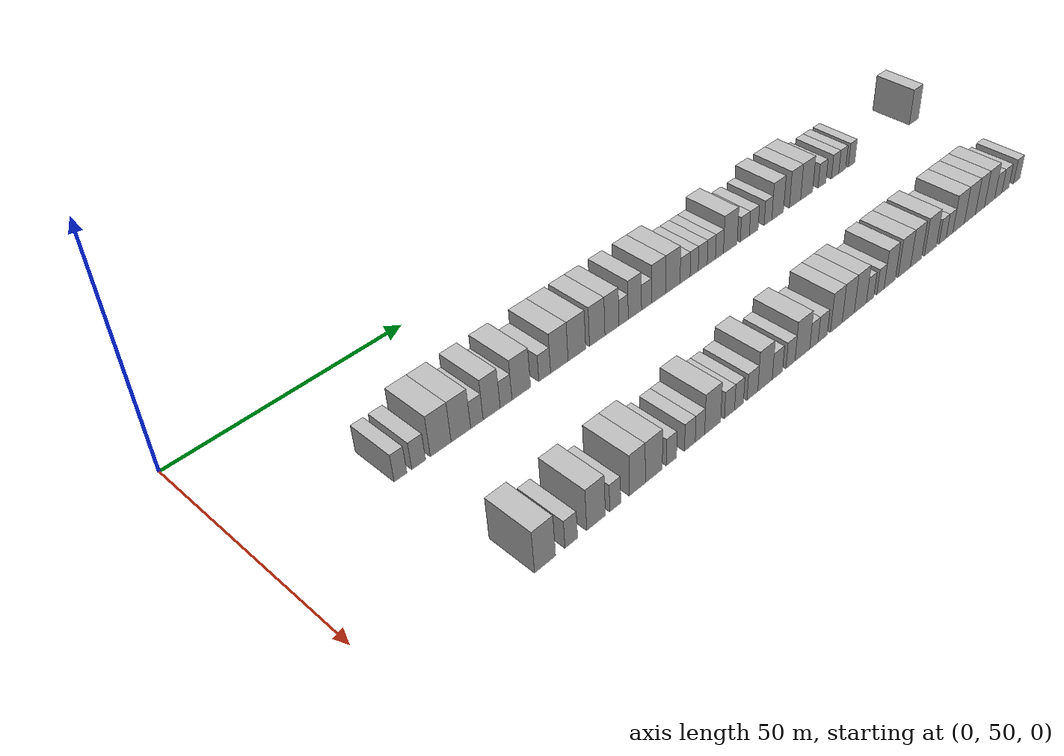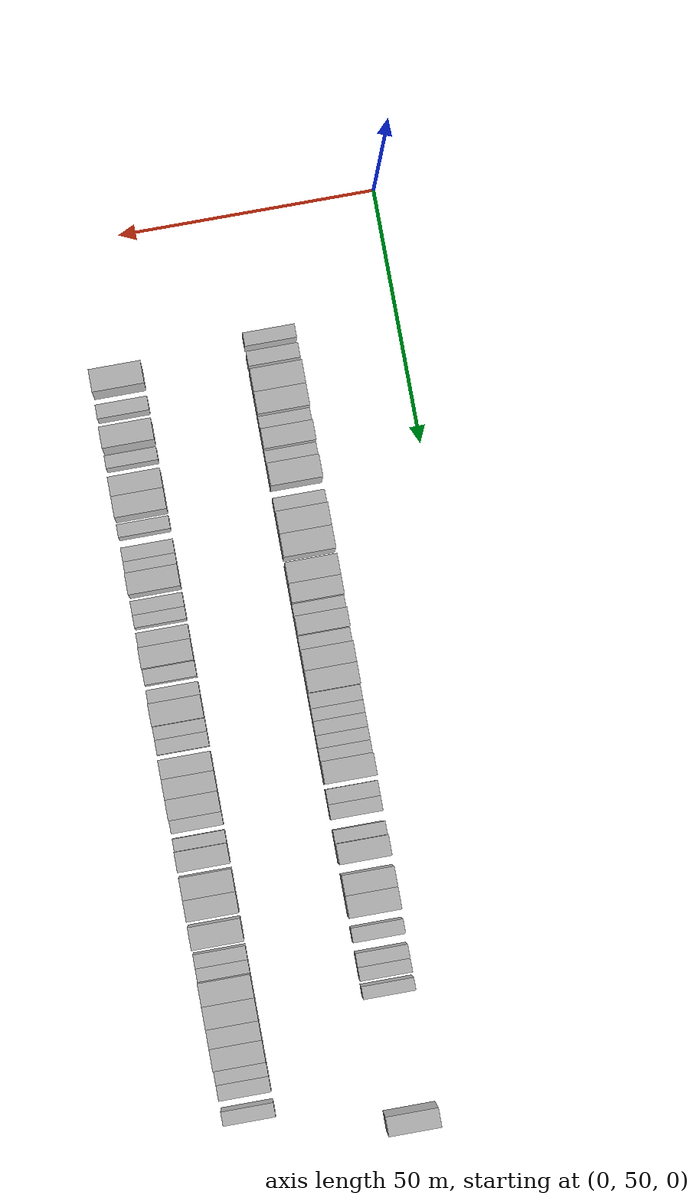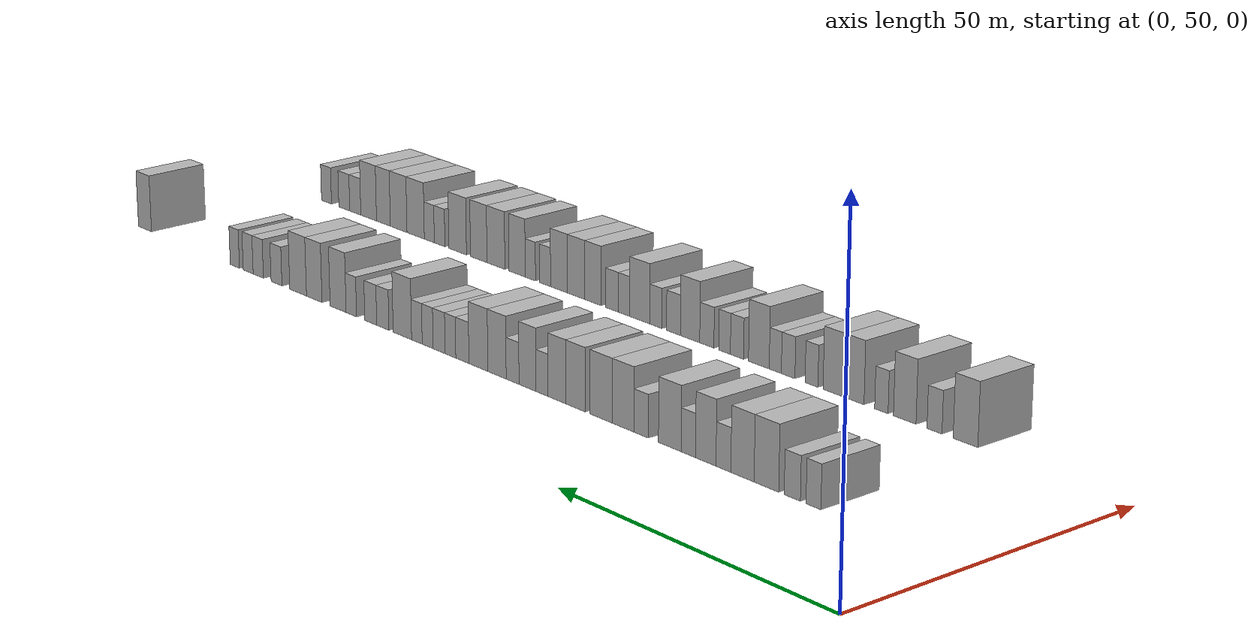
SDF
<sdf version="1.6">
 <world name="default">
  <model name="building_77">
   <static>1</static>
   <pose>25.0000 75.3189 0 0.000000 0.000000 0.000000</pose>
   <link name="link">
    <pose>0 0 3.00 0 0 0</pose>
    <collision name="collision"><geometry><box><size>10.0000 2.6233 6.0000</size></box></geometry></collision>
    <visual name="visual">
     <cast_shadows>0</cast_shadows>
     <geometry><box><size>10.0000 2.6233 6.0000</size></box></geometry>
     <material>
      <script>
       <uri>model://HANNAS_wall/materials/scripts</uri>
       <uri>model://HANNAS_wall/materials/textures</uri>
       <name>vrc/HANNAS_wall</name>
      </script>
     </material>
    </visual>
   </link>
  </model>
  <model name="building_78">
   <static>1</static>
   <pose>25.0000 79.0776 0 0.000000 0.000000 0.000000</pose>
   <link name="link">
    <pose>0 0 3.00 0 0 0</pose>
    <collision name="collision"><geometry><box><size>10.0000 2.8940 6.0000</size></box></geometry></collision>
    <visual name="visual">
     <cast_shadows>0</cast_shadows>
     <geometry><box><size>10.0000 2.8940 6.0000</size></box></geometry>
     <material>
      <script>
       <uri>model://HANNAS_wall/materials/scripts</uri>
       <uri>model://HANNAS_wall/materials/textures</uri>
       <name>vrc/HANNAS_wall</name>
      </script>
     </material>
    </visual>
   </link>
  </model>
  <model name="building_79">
   <static>1</static>
   <pose>25.0000 83.7613 0 0.000000 0.000000 0.000000</pose>
   <link name="link">
    <pose>0 0 4.50 0 0 0</pose>
    <collision name="collision"><geometry><box><size>10.0000 4.4735 9.0000</size></box></geometry></collision>
    <visual name="visual">
     <cast_shadows>0</cast_shadows>
     <geometry><box><size>10.0000 4.4735 9.0000</size></box></geometry>
     <material>
      <script>
       <uri>model://HANNAS_wall/materials/scripts</uri>
       <uri>model://HANNAS_wall/materials/textures</uri>
       <name>vrc/HANNAS_wall</name>
      </script>
     </material>
    </visual>
   </link>
  </model>
  <model name="building_80">
   <static>1</static>
   <pose>25.0000 88.1478 0 0.000000 0.000000 0.000000</pose>
   <link name="link">
    <pose>0 0 4.50 0 0 0</pose>
    <collision name="collision"><geometry><box><size>10.0000 4.2995 9.0000</size></box></geometry></collision>
    <visual name="visual">
     <cast_shadows>0</cast_shadows>
     <geometry><box><size>10.0000 4.2995 9.0000</size></box></geometry>
     <material>
      <script>
       <uri>model://HANNAS_wall/materials/scripts</uri>
       <uri>model://HANNAS_wall/materials/textures</uri>
       <name>vrc/HANNAS_wall</name>
      </script>
     </material>
    </visual>
   </link>
  </model>
  <model name="building_81">
   <static>1</static>
   <pose>25.0000 91.6891 0 0.000000 0.000000 0.000000</pose>
   <link name="link">
    <pose>0 0 3.00 0 0 0</pose>
    <collision name="collision"><geometry><box><size>10.0000 2.7831 6.0000</size></box></geometry></collision>
    <visual name="visual">
     <cast_shadows>0</cast_shadows>
     <geometry><box><size>10.0000 2.7831 6.0000</size></box></geometry>
     <material>
      <script>
       <uri>model://HANNAS_wall/materials/scripts</uri>
       <uri>model://HANNAS_wall/materials/textures</uri>
       <name>vrc/HANNAS_wall</name>
      </script>
     </material>
    </visual>
   </link>
  </model>
  <model name="building_82">
   <static>1</static>
   <pose>25.0000 95.0212 0 0.000000 0.000000 0.000000</pose>
   <link name="link">
    <pose>0 0 4.50 0 0 0</pose>
    <collision name="collision"><geometry><box><size>10.0000 3.8811 9.0000</size></box></geometry></collision>
    <visual name="visual">
     <cast_shadows>0</cast_shadows>
     <geometry><box><size>10.0000 3.8811 9.0000</size></box></geometry>
     <material>
      <script>
       <uri>model://HANNAS_wall/materials/scripts</uri>
       <uri>model://HANNAS_wall/materials/textures</uri>
       <name>vrc/HANNAS_wall</name>
      </script>
     </material>
    </visual>
   </link>
  </model>
  <model name="building_83">
   <static>1</static>
   <pose>25.0000 98.3349 0 0.000000 0.000000 0.000000</pose>
   <link name="link">
    <pose>0 0 3.00 0 0 0</pose>
    <collision name="collision"><geometry><box><size>10.0000 2.7463 6.0000</size></box></geometry></collision>
    <visual name="visual">
     <cast_shadows>0</cast_shadows>
     <geometry><box><size>10.0000 2.7463 6.0000</size></box></geometry>
     <material>
      <script>
       <uri>model://HANNAS_wall/materials/scripts</uri>
       <uri>model://HANNAS_wall/materials/textures</uri>
       <name>vrc/HANNAS_wall</name>
      </script>
     </material>
    </visual>
   </link>
  </model>
  <model name="building_84">
   <static>1</static>
   <pose>25.0000 101.9102 0 0.000000 0.000000 0.000000</pose>
   <link name="link">
    <pose>0 0 4.50 0 0 0</pose>
    <collision name="collision"><geometry><box><size>10.0000 4.4043 9.0000</size></box></geometry></collision>
    <visual name="visual">
     <cast_shadows>0</cast_shadows>
     <geometry><box><size>10.0000 4.4043 9.0000</size></box></geometry>
     <material>
      <script>
       <uri>model://HANNAS_wall/materials/scripts</uri>
       <uri>model://HANNAS_wall/materials/textures</uri>
       <name>vrc/HANNAS_wall</name>
      </script>
     </material>
    </visual>
   </link>
  </model>
  <model name="building_85">
   <static>1</static>
   <pose>25.0000 107.5431 0 0.000000 0.000000 0.000000</pose>
   <link name="link">
    <pose>0 0 3.00 0 0 0</pose>
    <collision name="collision"><geometry><box><size>10.0000 2.8617 6.0000</size></box></geometry></collision>
    <visual name="visual">
     <cast_shadows>0</cast_shadows>
     <geometry><box><size>10.0000 2.8617 6.0000</size></box></geometry>
     <material>
      <script>
       <uri>model://HANNAS_wall/materials/scripts</uri>
       <uri>model://HANNAS_wall/materials/textures</uri>
       <name>vrc/HANNAS_wall</name>
      </script>
     </material>
    </visual>
   </link>
  </model>
  <model name="building_86">
   <static>1</static>
   <pose>25.0000 111.1448 0 0.000000 0.000000 0.000000</pose>
   <link name="link">
    <pose>0 0 4.50 0 0 0</pose>
    <collision name="collision"><geometry><box><size>10.0000 4.3417 9.0000</size></box></geometry></collision>
    <visual name="visual">
     <cast_shadows>0</cast_shadows>
     <geometry><box><size>10.0000 4.3417 9.0000</size></box></geometry>
     <material>
      <script>
       <uri>model://HANNAS_wall/materials/scripts</uri>
       <uri>model://HANNAS_wall/materials/textures</uri>
       <name>vrc/HANNAS_wall</name>
      </script>
     </material>
    </visual>
   </link>
  </model>
  <model name="building_87">
   <static>1</static>
   <pose>25.0000 115.5539 0 0.000000 0.000000 0.000000</pose>
   <link name="link">
    <pose>0 0 4.50 0 0 0</pose>
    <collision name="collision"><geometry><box><size>10.0000 4.4764 9.0000</size></box></geometry></collision>
    <visual name="visual">
     <cast_shadows>0</cast_shadows>
     <geometry><box><size>10.0000 4.4764 9.0000</size></box></geometry>
     <material>
      <script>
       <uri>model://HANNAS_wall/materials/scripts</uri>
       <uri>model://HANNAS_wall/materials/textures</uri>
       <name>vrc/HANNAS_wall</name>
      </script>
     </material>
    </visual>
   </link>
  </model>
  <model name="building_88">
   <static>1</static>
   <pose>25.0000 120.8018 0 0.000000 0.000000 0.000000</pose>
   <link name="link">
    <pose>0 0 4.50 0 0 0</pose>
    <collision name="collision"><geometry><box><size>10.0000 4.0196 9.0000</size></box></geometry></collision>
    <visual name="visual">
     <cast_shadows>0</cast_shadows>
     <geometry><box><size>10.0000 4.0196 9.0000</size></box></geometry>
     <material>
      <script>
       <uri>model://HANNAS_wall/materials/scripts</uri>
       <uri>model://HANNAS_wall/materials/textures</uri>
       <name>vrc/HANNAS_wall</name>
      </script>
     </material>
    </visual>
   </link>
  </model>
  <model name="building_89">
   <static>1</static>
   <pose>25.0000 124.6734 0 0.000000 0.000000 0.000000</pose>
   <link name="link">
    <pose>0 0 4.50 0 0 0</pose>
    <collision name="collision"><geometry><box><size>10.0000 3.7235 9.0000</size></box></geometry></collision>
    <visual name="visual">
     <cast_shadows>0</cast_shadows>
     <geometry><box><size>10.0000 3.7235 9.0000</size></box></geometry>
     <material>
      <script>
       <uri>model://HANNAS_wall/materials/scripts</uri>
       <uri>model://HANNAS_wall/materials/textures</uri>
       <name>vrc/HANNAS_wall</name>
      </script>
     </material>
    </visual>
   </link>
  </model>
  <model name="building_90">
   <static>1</static>
   <pose>25.0000 127.7952 0 0.000000 0.000000 0.000000</pose>
   <link name="link">
    <pose>0 0 3.00 0 0 0</pose>
    <collision name="collision"><geometry><box><size>10.0000 2.5201 6.0000</size></box></geometry></collision>
    <visual name="visual">
     <cast_shadows>0</cast_shadows>
     <geometry><box><size>10.0000 2.5201 6.0000</size></box></geometry>
     <material>
      <script>
       <uri>model://HANNAS_wall/materials/scripts</uri>
       <uri>model://HANNAS_wall/materials/textures</uri>
       <name>vrc/HANNAS_wall</name>
      </script>
     </material>
    </visual>
   </link>
  </model>
  <model name="building_91">
   <static>1</static>
   <pose>25.0000 130.8812 0 0.000000 0.000000 0.000000</pose>
   <link name="link">
    <pose>0 0 4.50 0 0 0</pose>
    <collision name="collision"><geometry><box><size>10.0000 3.6520 9.0000</size></box></geometry></collision>
    <visual name="visual">
     <cast_shadows>0</cast_shadows>
     <geometry><box><size>10.0000 3.6520 9.0000</size></box></geometry>
     <material>
      <script>
       <uri>model://HANNAS_wall/materials/scripts</uri>
       <uri>model://HANNAS_wall/materials/textures</uri>
       <name>vrc/HANNAS_wall</name>
      </script>
     </material>
    </visual>
   </link>
  </model>
  <model name="building_92">
   <static>1</static>
   <pose>25.0000 134.0955 0 0.000000 0.000000 0.000000</pose>
   <link name="link">
    <pose>0 0 3.00 0 0 0</pose>
    <collision name="collision"><geometry><box><size>10.0000 2.7766 6.0000</size></box></geometry></collision>
    <visual name="visual">
     <cast_shadows>0</cast_shadows>
     <geometry><box><size>10.0000 2.7766 6.0000</size></box></geometry>
     <material>
      <script>
       <uri>model://HANNAS_wall/materials/scripts</uri>
       <uri>model://HANNAS_wall/materials/textures</uri>
       <name>vrc/HANNAS_wall</name>
      </script>
     </material>
    </visual>
   </link>
  </model>
  <model name="building_93">
   <static>1</static>
   <pose>25.0000 137.4864 0 0.000000 0.000000 0.000000</pose>
   <link name="link">
    <pose>0 0 4.50 0 0 0</pose>
    <collision name="collision"><geometry><box><size>10.0000 4.0050 9.0000</size></box></geometry></collision>
    <visual name="visual">
     <cast_shadows>0</cast_shadows>
     <geometry><box><size>10.0000 4.0050 9.0000</size></box></geometry>
     <material>
      <script>
       <uri>model://HANNAS_wall/materials/scripts</uri>
       <uri>model://HANNAS_wall/materials/textures</uri>
       <name>vrc/HANNAS_wall</name>
      </script>
     </material>
    </visual>
   </link>
  </model>
  <model name="building_94">
   <static>1</static>
   <pose>25.0000 141.5868 0 0.000000 0.000000 0.000000</pose>
   <link name="link">
    <pose>0 0 4.50 0 0 0</pose>
    <collision name="collision"><geometry><box><size>10.0000 4.1957 9.0000</size></box></geometry></collision>
    <visual name="visual">
     <cast_shadows>0</cast_shadows>
     <geometry><box><size>10.0000 4.1957 9.0000</size></box></geometry>
     <material>
      <script>
       <uri>model://HANNAS_wall/materials/scripts</uri>
       <uri>model://HANNAS_wall/materials/textures</uri>
       <name>vrc/HANNAS_wall</name>
      </script>
     </material>
    </visual>
   </link>
  </model>
  <model name="building_95">
   <static>1</static>
   <pose>25.0000 145.1538 0 0.000000 0.000000 0.000000</pose>
   <link name="link">
    <pose>0 0 3.00 0 0 0</pose>
    <collision name="collision"><geometry><box><size>10.0000 2.9384 6.0000</size></box></geometry></collision>
    <visual name="visual">
     <cast_shadows>0</cast_shadows>
     <geometry><box><size>10.0000 2.9384 6.0000</size></box></geometry>
     <material>
      <script>
       <uri>model://HANNAS_wall/materials/scripts</uri>
       <uri>model://HANNAS_wall/materials/textures</uri>
       <name>vrc/HANNAS_wall</name>
      </script>
     </material>
    </visual>
   </link>
  </model>
  <model name="building_96">
   <static>1</static>
   <pose>25.0000 147.8323 0 0.000000 0.000000 0.000000</pose>
   <link name="link">
    <pose>0 0 3.00 0 0 0</pose>
    <collision name="collision"><geometry><box><size>10.0000 2.4186 6.0000</size></box></geometry></collision>
    <visual name="visual">
     <cast_shadows>0</cast_shadows>
     <geometry><box><size>10.0000 2.4186 6.0000</size></box></geometry>
     <material>
      <script>
       <uri>model://HANNAS_wall/materials/scripts</uri>
       <uri>model://HANNAS_wall/materials/textures</uri>
       <name>vrc/HANNAS_wall</name>
      </script>
     </material>
    </visual>
   </link>
  </model>
  <model name="building_97">
   <static>1</static>
   <pose>25.0000 150.4074 0 0.000000 0.000000 0.000000</pose>
   <link name="link">
    <pose>0 0 3.00 0 0 0</pose>
    <collision name="collision"><geometry><box><size>10.0000 2.7315 6.0000</size></box></geometry></collision>
    <visual name="visual">
     <cast_shadows>0</cast_shadows>
     <geometry><box><size>10.0000 2.7315 6.0000</size></box></geometry>
     <material>
      <script>
       <uri>model://HANNAS_wall/materials/scripts</uri>
       <uri>model://HANNAS_wall/materials/textures</uri>
       <name>vrc/HANNAS_wall</name>
      </script>
     </material>
    </visual>
   </link>
  </model>
  <model name="building_98">
   <static>1</static>
   <pose>25.0000 153.0281 0 0.000000 0.000000 0.000000</pose>
   <link name="link">
    <pose>0 0 3.00 0 0 0</pose>
    <collision name="collision"><geometry><box><size>10.0000 2.5101 6.0000</size></box></geometry></collision>
    <visual name="visual">
     <cast_shadows>0</cast_shadows>
     <geometry><box><size>10.0000 2.5101 6.0000</size></box></geometry>
     <material>
      <script>
       <uri>model://HANNAS_wall/materials/scripts</uri>
       <uri>model://HANNAS_wall/materials/textures</uri>
       <name>vrc/HANNAS_wall</name>
      </script>
     </material>
    </visual>
   </link>
  </model>
  <model name="building_99">
   <static>1</static>
   <pose>25.0000 155.5110 0 0.000000 0.000000 0.000000</pose>
   <link name="link">
    <pose>0 0 3.00 0 0 0</pose>
    <collision name="collision"><geometry><box><size>10.0000 2.4556 6.0000</size></box></geometry></collision>
    <visual name="visual">
     <cast_shadows>0</cast_shadows>
     <geometry><box><size>10.0000 2.4556 6.0000</size></box></geometry>
     <material>
      <script>
       <uri>model://HANNAS_wall/materials/scripts</uri>
       <uri>model://HANNAS_wall/materials/textures</uri>
       <name>vrc/HANNAS_wall</name>
      </script>
     </material>
    </visual>
   </link>
  </model>
  <model name="building_100">
   <static>1</static>
   <pose>25.0000 158.8963 0 0.000000 0.000000 0.000000</pose>
   <link name="link">
    <pose>0 0 4.50 0 0 0</pose>
    <collision name="collision"><geometry><box><size>10.0000 4.3149 9.0000</size></box></geometry></collision>
    <visual name="visual">
     <cast_shadows>0</cast_shadows>
     <geometry><box><size>10.0000 4.3149 9.0000</size></box></geometry>
     <material>
      <script>
       <uri>model://HANNAS_wall/materials/scripts</uri>
       <uri>model://HANNAS_wall/materials/textures</uri>
       <name>vrc/HANNAS_wall</name>
      </script>
     </material>
    </visual>
   </link>
  </model>
  <model name="building_101">
   <static>1</static>
   <pose>25.0000 163.5028 0 0.000000 0.000000 0.000000</pose>
   <link name="link">
    <pose>0 0 3.00 0 0 0</pose>
    <collision name="collision"><geometry><box><size>10.0000 2.8981 6.0000</size></box></geometry></collision>
    <visual name="visual">
     <cast_shadows>0</cast_shadows>
     <geometry><box><size>10.0000 2.8981 6.0000</size></box></geometry>
     <material>
      <script>
       <uri>model://HANNAS_wall/materials/scripts</uri>
       <uri>model://HANNAS_wall/materials/textures</uri>
       <name>vrc/HANNAS_wall</name>
      </script>
     </material>
    </visual>
   </link>
  </model>
  <model name="building_102">
   <static>1</static>
   <pose>25.0000 166.3802 0 0.000000 0.000000 0.000000</pose>
   <link name="link">
    <pose>0 0 3.00 0 0 0</pose>
    <collision name="collision"><geometry><box><size>10.0000 2.8567 6.0000</size></box></geometry></collision>
    <visual name="visual">
     <cast_shadows>0</cast_shadows>
     <geometry><box><size>10.0000 2.8567 6.0000</size></box></geometry>
     <material>
      <script>
       <uri>model://HANNAS_wall/materials/scripts</uri>
       <uri>model://HANNAS_wall/materials/textures</uri>
       <name>vrc/HANNAS_wall</name>
      </script>
     </material>
    </visual>
   </link>
  </model>
  <model name="building_103">
   <static>1</static>
   <pose>25.0000 171.0728 0 0.000000 0.000000 0.000000</pose>
   <link name="link">
    <pose>0 0 3.00 0 0 0</pose>
    <collision name="collision"><geometry><box><size>10.0000 2.5285 6.0000</size></box></geometry></collision>
    <visual name="visual">
     <cast_shadows>0</cast_shadows>
     <geometry><box><size>10.0000 2.5285 6.0000</size></box></geometry>
     <material>
      <script>
       <uri>model://HANNAS_wall/materials/scripts</uri>
       <uri>model://HANNAS_wall/materials/textures</uri>
       <name>vrc/HANNAS_wall</name>
      </script>
     </material>
    </visual>
   </link>
  </model>
  <model name="building_104">
   <static>1</static>
   <pose>25.0000 174.3036 0 0.000000 0.000000 0.000000</pose>
   <link name="link">
    <pose>0 0 4.50 0 0 0</pose>
    <collision name="collision"><geometry><box><size>10.0000 3.9330 9.0000</size></box></geometry></collision>
    <visual name="visual">
     <cast_shadows>0</cast_shadows>
     <geometry><box><size>10.0000 3.9330 9.0000</size></box></geometry>
     <material>
      <script>
       <uri>model://HANNAS_wall/materials/scripts</uri>
       <uri>model://HANNAS_wall/materials/textures</uri>
       <name>vrc/HANNAS_wall</name>
      </script>
     </material>
    </visual>
   </link>
  </model>
  <model name="building_105">
   <static>1</static>
   <pose>25.0000 180.2155 0 0.000000 0.000000 0.000000</pose>
   <link name="link">
    <pose>0 0 4.50 0 0 0</pose>
    <collision name="collision"><geometry><box><size>10.0000 3.8908 9.0000</size></box></geometry></collision>
    <visual name="visual">
     <cast_shadows>0</cast_shadows>
     <geometry><box><size>10.0000 3.8908 9.0000</size></box></geometry>
     <material>
      <script>
       <uri>model://HANNAS_wall/materials/scripts</uri>
       <uri>model://HANNAS_wall/materials/textures</uri>
       <name>vrc/HANNAS_wall</name>
      </script>
     </material>
    </visual>
   </link>
  </model>
  <model name="building_106">
   <static>1</static>
   <pose>25.0000 184.2720 0 0.000000 0.000000 0.000000</pose>
   <link name="link">
    <pose>0 0 4.50 0 0 0</pose>
    <collision name="collision"><geometry><box><size>10.0000 4.2222 9.0000</size></box></geometry></collision>
    <visual name="visual">
     <cast_shadows>0</cast_shadows>
     <geometry><box><size>10.0000 4.2222 9.0000</size></box></geometry>
     <material>
      <script>
       <uri>model://HANNAS_wall/materials/scripts</uri>
       <uri>model://HANNAS_wall/materials/textures</uri>
       <name>vrc/HANNAS_wall</name>
      </script>
     </material>
    </visual>
   </link>
  </model>
  <model name="building_107">
   <static>1</static>
   <pose>25.0000 189.7821 0 0.000000 0.000000 0.000000</pose>
   <link name="link">
    <pose>0 0 3.00 0 0 0</pose>
    <collision name="collision"><geometry><box><size>10.0000 2.7980 6.0000</size></box></geometry></collision>
    <visual name="visual">
     <cast_shadows>0</cast_shadows>
     <geometry><box><size>10.0000 2.7980 6.0000</size></box></geometry>
     <material>
      <script>
       <uri>model://HANNAS_wall/materials/scripts</uri>
       <uri>model://HANNAS_wall/materials/textures</uri>
       <name>vrc/HANNAS_wall</name>
      </script>
     </material>
    </visual>
   </link>
  </model>
  <model name="building_108">
   <static>1</static>
   <pose>25.0000 194.5158 0 0.000000 0.000000 0.000000</pose>
   <link name="link">
    <pose>0 0 3.00 0 0 0</pose>
    <collision name="collision"><geometry><box><size>10.0000 2.6694 6.0000</size></box></geometry></collision>
    <visual name="visual">
     <cast_shadows>0</cast_shadows>
     <geometry><box><size>10.0000 2.6694 6.0000</size></box></geometry>
     <material>
      <script>
       <uri>model://HANNAS_wall/materials/scripts</uri>
       <uri>model://HANNAS_wall/materials/textures</uri>
       <name>vrc/HANNAS_wall</name>
      </script>
     </material>
    </visual>
   </link>
  </model>
  <model name="building_109">
   <static>1</static>
   <pose>25.0000 197.1554 0 0.000000 0.000000 0.000000</pose>
   <link name="link">
    <pose>0 0 3.00 0 0 0</pose>
    <collision name="collision"><geometry><box><size>10.0000 2.6099 6.0000</size></box></geometry></collision>
    <visual name="visual">
     <cast_shadows>0</cast_shadows>
     <geometry><box><size>10.0000 2.6099 6.0000</size></box></geometry>
     <material>
      <script>
       <uri>model://HANNAS_wall/materials/scripts</uri>
       <uri>model://HANNAS_wall/materials/textures</uri>
       <name>vrc/HANNAS_wall</name>
      </script>
     </material>
    </visual>
   </link>
  </model>
  <model name="building_110">
   <static>1</static>
   <pose>25.0000 200.6789 0 0.000000 0.000000 0.000000</pose>
   <link name="link">
    <pose>0 0 3.00 0 0 0</pose>
    <collision name="collision"><geometry><box><size>10.0000 2.4370 6.0000</size></box></geometry></collision>
    <visual name="visual">
     <cast_shadows>0</cast_shadows>
     <geometry><box><size>10.0000 2.4370 6.0000</size></box></geometry>
     <material>
      <script>
       <uri>model://HANNAS_wall/materials/scripts</uri>
       <uri>model://HANNAS_wall/materials/textures</uri>
       <name>vrc/HANNAS_wall</name>
      </script>
     </material>
    </visual>
   </link>
  </model>
  <model name="building_111">
   <static>1</static>
   <pose>25.0000 225.4482 0 0.000000 0.000000 0.000000</pose>
   <link name="link">
    <pose>0 0 4.50 0 0 0</pose>
    <collision name="collision"><geometry><box><size>10.0000 3.7005 9.0000</size></box></geometry></collision>
    <visual name="visual">
     <cast_shadows>0</cast_shadows>
     <geometry><box><size>10.0000 3.7005 9.0000</size></box></geometry>
     <material>
      <script>
       <uri>model://HANNAS_wall/materials/scripts</uri>
       <uri>model://HANNAS_wall/materials/textures</uri>
       <name>vrc/HANNAS_wall</name>
      </script>
     </material>
    </visual>
   </link>
  </model>
  <model name="building_180">
   <static>1</static>
   <pose>55.0000 78.4619 0 0.000000 0.000000 0.000000</pose>
   <link name="link">
    <pose>0 0 4.50 0 0 0</pose>
    <collision name="collision"><geometry><box><size>10.0000 4.3713 9.0000</size></box></geometry></collision>
    <visual name="visual">
     <cast_shadows>0</cast_shadows>
     <geometry><box><size>10.0000 4.3713 9.0000</size></box></geometry>
     <material>
      <script>
       <uri>model://HANNAS_wall/materials/scripts</uri>
       <uri>model://HANNAS_wall/materials/textures</uri>
       <name>vrc/HANNAS_wall</name>
      </script>
     </material>
    </visual>
   </link>
  </model>
  <model name="building_181">
   <static>1</static>
   <pose>55.0000 84.0004 0 0.000000 0.000000 0.000000</pose>
   <link name="link">
    <pose>0 0 3.00 0 0 0</pose>
    <collision name="collision"><geometry><box><size>10.0000 2.7057 6.0000</size></box></geometry></collision>
    <visual name="visual">
     <cast_shadows>0</cast_shadows>
     <geometry><box><size>10.0000 2.7057 6.0000</size></box></geometry>
     <material>
      <script>
       <uri>model://HANNAS_wall/materials/scripts</uri>
       <uri>model://HANNAS_wall/materials/textures</uri>
       <name>vrc/HANNAS_wall</name>
      </script>
     </material>
    </visual>
   </link>
  </model>
  <model name="building_182">
   <static>1</static>
   <pose>55.0000 89.4254 0 0.000000 0.000000 0.000000</pose>
   <link name="link">
    <pose>0 0 4.50 0 0 0</pose>
    <collision name="collision"><geometry><box><size>10.0000 4.1444 9.0000</size></box></geometry></collision>
    <visual name="visual">
     <cast_shadows>0</cast_shadows>
     <geometry><box><size>10.0000 4.1444 9.0000</size></box></geometry>
     <material>
      <script>
       <uri>model://HANNAS_wall/materials/scripts</uri>
       <uri>model://HANNAS_wall/materials/textures</uri>
       <name>vrc/HANNAS_wall</name>
      </script>
     </material>
    </visual>
   </link>
  </model>
  <model name="building_183">
   <static>1</static>
   <pose>55.0000 93.7477 0 0.000000 0.000000 0.000000</pose>
   <link name="link">
    <pose>0 0 3.00 0 0 0</pose>
    <collision name="collision"><geometry><box><size>10.0000 2.5002 6.0000</size></box></geometry></collision>
    <visual name="visual">
     <cast_shadows>0</cast_shadows>
     <geometry><box><size>10.0000 2.5002 6.0000</size></box></geometry>
     <material>
      <script>
       <uri>model://HANNAS_wall/materials/scripts</uri>
       <uri>model://HANNAS_wall/materials/textures</uri>
       <name>vrc/HANNAS_wall</name>
      </script>
     </material>
    </visual>
   </link>
  </model>
  <model name="building_184">
   <static>1</static>
   <pose>55.0000 98.8679 0 0.000000 0.000000 0.000000</pose>
   <link name="link">
    <pose>0 0 4.50 0 0 0</pose>
    <collision name="collision"><geometry><box><size>10.0000 3.7403 9.0000</size></box></geometry></collision>
    <visual name="visual">
     <cast_shadows>0</cast_shadows>
     <geometry><box><size>10.0000 3.7403 9.0000</size></box></geometry>
     <material>
      <script>
       <uri>model://HANNAS_wall/materials/scripts</uri>
       <uri>model://HANNAS_wall/materials/textures</uri>
       <name>vrc/HANNAS_wall</name>
      </script>
     </material>
    </visual>
   </link>
  </model>
  <model name="building_185">
   <static>1</static>
   <pose>55.0000 102.7817 0 0.000000 0.000000 0.000000</pose>
   <link name="link">
    <pose>0 0 4.50 0 0 0</pose>
    <collision name="collision"><geometry><box><size>10.0000 4.0871 9.0000</size></box></geometry></collision>
    <visual name="visual">
     <cast_shadows>0</cast_shadows>
     <geometry><box><size>10.0000 4.0871 9.0000</size></box></geometry>
     <material>
      <script>
       <uri>model://HANNAS_wall/materials/scripts</uri>
       <uri>model://HANNAS_wall/materials/textures</uri>
       <name>vrc/HANNAS_wall</name>
      </script>
     </material>
    </visual>
   </link>
  </model>
  <model name="building_186">
   <static>1</static>
   <pose>55.0000 107.0708 0 0.000000 0.000000 0.000000</pose>
   <link name="link">
    <pose>0 0 3.00 0 0 0</pose>
    <collision name="collision"><geometry><box><size>10.0000 2.4912 6.0000</size></box></geometry></collision>
    <visual name="visual">
     <cast_shadows>0</cast_shadows>
     <geometry><box><size>10.0000 2.4912 6.0000</size></box></geometry>
     <material>
      <script>
       <uri>model://HANNAS_wall/materials/scripts</uri>
       <uri>model://HANNAS_wall/materials/textures</uri>
       <name>vrc/HANNAS_wall</name>
      </script>
     </material>
    </visual>
   </link>
  </model>
  <model name="building_187">
   <static>1</static>
   <pose>55.0000 111.6621 0 0.000000 0.000000 0.000000</pose>
   <link name="link">
    <pose>0 0 3.00 0 0 0</pose>
    <collision name="collision"><geometry><box><size>10.0000 2.6913 6.0000</size></box></geometry></collision>
    <visual name="visual">
     <cast_shadows>0</cast_shadows>
     <geometry><box><size>10.0000 2.6913 6.0000</size></box></geometry>
     <material>
      <script>
       <uri>model://HANNAS_wall/materials/scripts</uri>
       <uri>model://HANNAS_wall/materials/textures</uri>
       <name>vrc/HANNAS_wall</name>
      </script>
     </material>
    </visual>
   </link>
  </model>
  <model name="building_188">
   <static>1</static>
   <pose>55.0000 114.2147 0 0.000000 0.000000 0.000000</pose>
   <link name="link">
    <pose>0 0 3.00 0 0 0</pose>
    <collision name="collision"><geometry><box><size>10.0000 2.4139 6.0000</size></box></geometry></collision>
    <visual name="visual">
     <cast_shadows>0</cast_shadows>
     <geometry><box><size>10.0000 2.4139 6.0000</size></box></geometry>
     <material>
      <script>
       <uri>model://HANNAS_wall/materials/scripts</uri>
       <uri>model://HANNAS_wall/materials/textures</uri>
       <name>vrc/HANNAS_wall</name>
      </script>
     </material>
    </visual>
   </link>
  </model>
  <model name="building_189">
   <static>1</static>
   <pose>55.0000 117.5157 0 0.000000 0.000000 0.000000</pose>
   <link name="link">
    <pose>0 0 4.50 0 0 0</pose>
    <collision name="collision"><geometry><box><size>10.0000 4.1881 9.0000</size></box></geometry></collision>
    <visual name="visual">
     <cast_shadows>0</cast_shadows>
     <geometry><box><size>10.0000 4.1881 9.0000</size></box></geometry>
     <material>
      <script>
       <uri>model://HANNAS_wall/materials/scripts</uri>
       <uri>model://HANNAS_wall/materials/textures</uri>
       <name>vrc/HANNAS_wall</name>
      </script>
     </material>
    </visual>
   </link>
  </model>
  <model name="building_190">
   <static>1</static>
   <pose>55.0000 121.9585 0 0.000000 0.000000 0.000000</pose>
   <link name="link">
    <pose>0 0 3.00 0 0 0</pose>
    <collision name="collision"><geometry><box><size>10.0000 2.6974 6.0000</size></box></geometry></collision>
    <visual name="visual">
     <cast_shadows>0</cast_shadows>
     <geometry><box><size>10.0000 2.6974 6.0000</size></box></geometry>
     <material>
      <script>
       <uri>model://HANNAS_wall/materials/scripts</uri>
       <uri>model://HANNAS_wall/materials/textures</uri>
       <name>vrc/HANNAS_wall</name>
      </script>
     </material>
    </visual>
   </link>
  </model>
  <model name="building_191">
   <static>1</static>
   <pose>55.0000 124.5111 0 0.000000 0.000000 0.000000</pose>
   <link name="link">
    <pose>0 0 3.00 0 0 0</pose>
    <collision name="collision"><geometry><box><size>10.0000 2.4079 6.0000</size></box></geometry></collision>
    <visual name="visual">
     <cast_shadows>0</cast_shadows>
     <geometry><box><size>10.0000 2.4079 6.0000</size></box></geometry>
     <material>
      <script>
       <uri>model://HANNAS_wall/materials/scripts</uri>
       <uri>model://HANNAS_wall/materials/textures</uri>
       <name>vrc/HANNAS_wall</name>
      </script>
     </material>
    </visual>
   </link>
  </model>
  <model name="building_192">
   <static>1</static>
   <pose>55.0000 128.1963 0 0.000000 0.000000 0.000000</pose>
   <link name="link">
    <pose>0 0 3.00 0 0 0</pose>
    <collision name="collision"><geometry><box><size>10.0000 2.9625 6.0000</size></box></geometry></collision>
    <visual name="visual">
     <cast_shadows>0</cast_shadows>
     <geometry><box><size>10.0000 2.9625 6.0000</size></box></geometry>
     <material>
      <script>
       <uri>model://HANNAS_wall/materials/scripts</uri>
       <uri>model://HANNAS_wall/materials/textures</uri>
       <name>vrc/HANNAS_wall</name>
      </script>
     </material>
    </visual>
   </link>
  </model>
  <model name="building_193">
   <static>1</static>
   <pose>55.0000 131.7096 0 0.000000 0.000000 0.000000</pose>
   <link name="link">
    <pose>0 0 4.50 0 0 0</pose>
    <collision name="collision"><geometry><box><size>10.0000 4.0641 9.0000</size></box></geometry></collision>
    <visual name="visual">
     <cast_shadows>0</cast_shadows>
     <geometry><box><size>10.0000 4.0641 9.0000</size></box></geometry>
     <material>
      <script>
       <uri>model://HANNAS_wall/materials/scripts</uri>
       <uri>model://HANNAS_wall/materials/textures</uri>
       <name>vrc/HANNAS_wall</name>
      </script>
     </material>
    </visual>
   </link>
  </model>
  <model name="building_194">
   <static>1</static>
   <pose>55.0000 135.2241 0 0.000000 0.000000 0.000000</pose>
   <link name="link">
    <pose>0 0 3.00 0 0 0</pose>
    <collision name="collision"><geometry><box><size>10.0000 2.9650 6.0000</size></box></geometry></collision>
    <visual name="visual">
     <cast_shadows>0</cast_shadows>
     <geometry><box><size>10.0000 2.9650 6.0000</size></box></geometry>
     <material>
      <script>
       <uri>model://HANNAS_wall/materials/scripts</uri>
       <uri>model://HANNAS_wall/materials/textures</uri>
       <name>vrc/HANNAS_wall</name>
      </script>
     </material>
    </visual>
   </link>
  </model>
  <model name="building_195">
   <static>1</static>
   <pose>55.0000 139.0342 0 0.000000 0.000000 0.000000</pose>
   <link name="link">
    <pose>0 0 3.00 0 0 0</pose>
    <collision name="collision"><geometry><box><size>10.0000 2.6552 6.0000</size></box></geometry></collision>
    <visual name="visual">
     <cast_shadows>0</cast_shadows>
     <geometry><box><size>10.0000 2.6552 6.0000</size></box></geometry>
     <material>
      <script>
       <uri>model://HANNAS_wall/materials/scripts</uri>
       <uri>model://HANNAS_wall/materials/textures</uri>
       <name>vrc/HANNAS_wall</name>
      </script>
     </material>
    </visual>
   </link>
  </model>
  <model name="building_196">
   <static>1</static>
   <pose>55.0000 142.5465 0 0.000000 0.000000 0.000000</pose>
   <link name="link">
    <pose>0 0 4.50 0 0 0</pose>
    <collision name="collision"><geometry><box><size>10.0000 4.3694 9.0000</size></box></geometry></collision>
    <visual name="visual">
     <cast_shadows>0</cast_shadows>
     <geometry><box><size>10.0000 4.3694 9.0000</size></box></geometry>
     <material>
      <script>
       <uri>model://HANNAS_wall/materials/scripts</uri>
       <uri>model://HANNAS_wall/materials/textures</uri>
       <name>vrc/HANNAS_wall</name>
      </script>
     </material>
    </visual>
   </link>
  </model>
  <model name="building_197">
   <static>1</static>
   <pose>55.0000 145.9952 0 0.000000 0.000000 0.000000</pose>
   <link name="link">
    <pose>0 0 3.00 0 0 0</pose>
    <collision name="collision"><geometry><box><size>10.0000 2.5280 6.0000</size></box></geometry></collision>
    <visual name="visual">
     <cast_shadows>0</cast_shadows>
     <geometry><box><size>10.0000 2.5280 6.0000</size></box></geometry>
     <material>
      <script>
       <uri>model://HANNAS_wall/materials/scripts</uri>
       <uri>model://HANNAS_wall/materials/textures</uri>
       <name>vrc/HANNAS_wall</name>
      </script>
     </material>
    </visual>
   </link>
  </model>
  <model name="building_198">
   <static>1</static>
   <pose>55.0000 148.6784 0 0.000000 0.000000 0.000000</pose>
   <link name="link">
    <pose>0 0 3.00 0 0 0</pose>
    <collision name="collision"><geometry><box><size>10.0000 2.8383 6.0000</size></box></geometry></collision>
    <visual name="visual">
     <cast_shadows>0</cast_shadows>
     <geometry><box><size>10.0000 2.8383 6.0000</size></box></geometry>
     <material>
      <script>
       <uri>model://HANNAS_wall/materials/scripts</uri>
       <uri>model://HANNAS_wall/materials/textures</uri>
       <name>vrc/HANNAS_wall</name>
      </script>
     </material>
    </visual>
   </link>
  </model>
  <model name="building_199">
   <static>1</static>
   <pose>55.0000 152.9323 0 0.000000 0.000000 0.000000</pose>
   <link name="link">
    <pose>0 0 4.50 0 0 0</pose>
    <collision name="collision"><geometry><box><size>10.0000 3.6696 9.0000</size></box></geometry></collision>
    <visual name="visual">
     <cast_shadows>0</cast_shadows>
     <geometry><box><size>10.0000 3.6696 9.0000</size></box></geometry>
     <material>
      <script>
       <uri>model://HANNAS_wall/materials/scripts</uri>
       <uri>model://HANNAS_wall/materials/textures</uri>
       <name>vrc/HANNAS_wall</name>
      </script>
     </material>
    </visual>
   </link>
  </model>
  <model name="building_200">
   <static>1</static>
   <pose>55.0000 156.7093 0 0.000000 0.000000 0.000000</pose>
   <link name="link">
    <pose>0 0 4.50 0 0 0</pose>
    <collision name="collision"><geometry><box><size>10.0000 3.8843 9.0000</size></box></geometry></collision>
    <visual name="visual">
     <cast_shadows>0</cast_shadows>
     <geometry><box><size>10.0000 3.8843 9.0000</size></box></geometry>
     <material>
      <script>
       <uri>model://HANNAS_wall/materials/scripts</uri>
       <uri>model://HANNAS_wall/materials/textures</uri>
       <name>vrc/HANNAS_wall</name>
      </script>
     </material>
    </visual>
   </link>
  </model>
  <model name="building_201">
   <static>1</static>
   <pose>55.0000 160.6165 0 0.000000 0.000000 0.000000</pose>
   <link name="link">
    <pose>0 0 4.50 0 0 0</pose>
    <collision name="collision"><geometry><box><size>10.0000 3.9301 9.0000</size></box></geometry></collision>
    <visual name="visual">
     <cast_shadows>0</cast_shadows>
     <geometry><box><size>10.0000 3.9301 9.0000</size></box></geometry>
     <material>
      <script>
       <uri>model://HANNAS_wall/materials/scripts</uri>
       <uri>model://HANNAS_wall/materials/textures</uri>
       <name>vrc/HANNAS_wall</name>
      </script>
     </material>
    </visual>
   </link>
  </model>
  <model name="building_202">
   <static>1</static>
   <pose>55.0000 163.8407 0 0.000000 0.000000 0.000000</pose>
   <link name="link">
    <pose>0 0 3.00 0 0 0</pose>
    <collision name="collision"><geometry><box><size>10.0000 2.5184 6.0000</size></box></geometry></collision>
    <visual name="visual">
     <cast_shadows>0</cast_shadows>
     <geometry><box><size>10.0000 2.5184 6.0000</size></box></geometry>
     <material>
      <script>
       <uri>model://HANNAS_wall/materials/scripts</uri>
       <uri>model://HANNAS_wall/materials/textures</uri>
       <name>vrc/HANNAS_wall</name>
      </script>
     </material>
    </visual>
   </link>
  </model>
  <model name="building_203">
   <static>1</static>
   <pose>55.0000 167.3085 0 0.000000 0.000000 0.000000</pose>
   <link name="link">
    <pose>0 0 3.00 0 0 0</pose>
    <collision name="collision"><geometry><box><size>10.0000 2.4170 6.0000</size></box></geometry></collision>
    <visual name="visual">
     <cast_shadows>0</cast_shadows>
     <geometry><box><size>10.0000 2.4170 6.0000</size></box></geometry>
     <material>
      <script>
       <uri>model://HANNAS_wall/materials/scripts</uri>
       <uri>model://HANNAS_wall/materials/textures</uri>
       <name>vrc/HANNAS_wall</name>
      </script>
     </material>
    </visual>
   </link>
  </model>
  <model name="building_204">
   <static>1</static>
   <pose>55.0000 170.4397 0 0.000000 0.000000 0.000000</pose>
   <link name="link">
    <pose>0 0 4.50 0 0 0</pose>
    <collision name="collision"><geometry><box><size>10.0000 3.8456 9.0000</size></box></geometry></collision>
    <visual name="visual">
     <cast_shadows>0</cast_shadows>
     <geometry><box><size>10.0000 3.8456 9.0000</size></box></geometry>
     <material>
      <script>
       <uri>model://HANNAS_wall/materials/scripts</uri>
       <uri>model://HANNAS_wall/materials/textures</uri>
       <name>vrc/HANNAS_wall</name>
      </script>
     </material>
    </visual>
   </link>
  </model>
  <model name="building_205">
   <static>1</static>
   <pose>55.0000 175.5174 0 0.000000 0.000000 0.000000</pose>
   <link name="link">
    <pose>0 0 4.50 0 0 0</pose>
    <collision name="collision"><geometry><box><size>10.0000 4.3097 9.0000</size></box></geometry></collision>
    <visual name="visual">
     <cast_shadows>0</cast_shadows>
     <geometry><box><size>10.0000 4.3097 9.0000</size></box></geometry>
     <material>
      <script>
       <uri>model://HANNAS_wall/materials/scripts</uri>
       <uri>model://HANNAS_wall/materials/textures</uri>
       <name>vrc/HANNAS_wall</name>
      </script>
     </material>
    </visual>
   </link>
  </model>
  <model name="building_206">
   <static>1</static>
   <pose>55.0000 179.6847 0 0.000000 0.000000 0.000000</pose>
   <link name="link">
    <pose>0 0 4.50 0 0 0</pose>
    <collision name="collision"><geometry><box><size>10.0000 4.0250 9.0000</size></box></geometry></collision>
    <visual name="visual">
     <cast_shadows>0</cast_shadows>
     <geometry><box><size>10.0000 4.0250 9.0000</size></box></geometry>
     <material>
      <script>
       <uri>model://HANNAS_wall/materials/scripts</uri>
       <uri>model://HANNAS_wall/materials/textures</uri>
       <name>vrc/HANNAS_wall</name>
      </script>
     </material>
    </visual>
   </link>
  </model>
  <model name="building_207">
   <static>1</static>
   <pose>55.0000 184.8753 0 0.000000 0.000000 0.000000</pose>
   <link name="link">
    <pose>0 0 4.50 0 0 0</pose>
    <collision name="collision"><geometry><box><size>10.0000 4.3561 9.0000</size></box></geometry></collision>
    <visual name="visual">
     <cast_shadows>0</cast_shadows>
     <geometry><box><size>10.0000 4.3561 9.0000</size></box></geometry>
     <material>
      <script>
       <uri>model://HANNAS_wall/materials/scripts</uri>
       <uri>model://HANNAS_wall/materials/textures</uri>
       <name>vrc/HANNAS_wall</name>
      </script>
     </material>
    </visual>
   </link>
  </model>
  <model name="building_208">
   <static>1</static>
   <pose>55.0000 189.3805 0 0.000000 0.000000 0.000000</pose>
   <link name="link">
    <pose>0 0 3.00 0 0 0</pose>
    <collision name="collision"><geometry><box><size>10.0000 2.6543 6.0000</size></box></geometry></collision>
    <visual name="visual">
     <cast_shadows>0</cast_shadows>
     <geometry><box><size>10.0000 2.6543 6.0000</size></box></geometry>
     <material>
      <script>
       <uri>model://HANNAS_wall/materials/scripts</uri>
       <uri>model://HANNAS_wall/materials/textures</uri>
       <name>vrc/HANNAS_wall</name>
      </script>
     </material>
    </visual>
   </link>
  </model>
  <model name="building_209">
   <static>1</static>
   <pose>55.0000 191.9710 0 0.000000 0.000000 0.000000</pose>
   <link name="link">
    <pose>0 0 3.00 0 0 0</pose>
    <collision name="collision"><geometry><box><size>10.0000 2.5266 6.0000</size></box></geometry></collision>
    <visual name="visual">
     <cast_shadows>0</cast_shadows>
     <geometry><box><size>10.0000 2.5266 6.0000</size></box></geometry>
     <material>
      <script>
       <uri>model://HANNAS_wall/materials/scripts</uri>
       <uri>model://HANNAS_wall/materials/textures</uri>
       <name>vrc/HANNAS_wall</name>
      </script>
     </material>
    </visual>
   </link>
  </model>
  <model name="building_210">
   <static>1</static>
   <pose>55.0000 195.4537 0 0.000000 0.000000 0.000000</pose>
   <link name="link">
    <pose>0 0 4.50 0 0 0</pose>
    <collision name="collision"><geometry><box><size>10.0000 4.4389 9.0000</size></box></geometry></collision>
    <visual name="visual">
     <cast_shadows>0</cast_shadows>
     <geometry><box><size>10.0000 4.4389 9.0000</size></box></geometry>
     <material>
      <script>
       <uri>model://HANNAS_wall/materials/scripts</uri>
       <uri>model://HANNAS_wall/materials/textures</uri>
       <name>vrc/HANNAS_wall</name>
      </script>
     </material>
    </visual>
   </link>
  </model>
  <model name="building_211">
   <static>1</static>
   <pose>55.0000 199.8242 0 0.000000 0.000000 0.000000</pose>
   <link name="link">
    <pose>0 0 4.50 0 0 0</pose>
    <collision name="collision"><geometry><box><size>10.0000 4.3021 9.0000</size></box></geometry></collision>
    <visual name="visual">
     <cast_shadows>0</cast_shadows>
     <geometry><box><size>10.0000 4.3021 9.0000</size></box></geometry>
     <material>
      <script>
       <uri>model://HANNAS_wall/materials/scripts</uri>
       <uri>model://HANNAS_wall/materials/textures</uri>
       <name>vrc/HANNAS_wall</name>
      </script>
     </material>
    </visual>
   </link>
  </model>
  <model name="building_212">
   <static>1</static>
   <pose>55.0000 203.7870 0 0.000000 0.000000 0.000000</pose>
   <link name="link">
    <pose>0 0 4.50 0 0 0</pose>
    <collision name="collision"><geometry><box><size>10.0000 3.6234 9.0000</size></box></geometry></collision>
    <visual name="visual">
     <cast_shadows>0</cast_shadows>
     <geometry><box><size>10.0000 3.6234 9.0000</size></box></geometry>
     <material>
      <script>
       <uri>model://HANNAS_wall/materials/scripts</uri>
       <uri>model://HANNAS_wall/materials/textures</uri>
       <name>vrc/HANNAS_wall</name>
      </script>
     </material>
    </visual>
   </link>
  </model>
  <model name="building_213">
   <static>1</static>
   <pose>55.0000 207.6773 0 0.000000 0.000000 0.000000</pose>
   <link name="link">
    <pose>0 0 4.50 0 0 0</pose>
    <collision name="collision"><geometry><box><size>10.0000 4.1573 9.0000</size></box></geometry></collision>
    <visual name="visual">
     <cast_shadows>0</cast_shadows>
     <geometry><box><size>10.0000 4.1573 9.0000</size></box></geometry>
     <material>
      <script>
       <uri>model://HANNAS_wall/materials/scripts</uri>
       <uri>model://HANNAS_wall/materials/textures</uri>
       <name>vrc/HANNAS_wall</name>
      </script>
     </material>
    </visual>
   </link>
  </model>
  <model name="building_214">
   <static>1</static>
   <pose>55.0000 211.2363 0 0.000000 0.000000 0.000000</pose>
   <link name="link">
    <pose>0 0 3.00 0 0 0</pose>
    <collision name="collision"><geometry><box><size>10.0000 2.9606 6.0000</size></box></geometry></collision>
    <visual name="visual">
     <cast_shadows>0</cast_shadows>
     <geometry><box><size>10.0000 2.9606 6.0000</size></box></geometry>
     <material>
      <script>
       <uri>model://HANNAS_wall/materials/scripts</uri>
       <uri>model://HANNAS_wall/materials/textures</uri>
       <name>vrc/HANNAS_wall</name>
      </script>
     </material>
    </visual>
   </link>
  </model>
  <model name="building_215">
   <static>1</static>
   <pose>55.0000 214.1877 0 0.000000 0.000000 0.000000</pose>
   <link name="link">
    <pose>0 0 3.00 0 0 0</pose>
    <collision name="collision"><geometry><box><size>10.0000 2.9421 6.0000</size></box></geometry></collision>
    <visual name="visual">
     <cast_shadows>0</cast_shadows>
     <geometry><box><size>10.0000 2.9421 6.0000</size></box></geometry>
     <material>
      <script>
       <uri>model://HANNAS_wall/materials/scripts</uri>
       <uri>model://HANNAS_wall/materials/textures</uri>
       <name>vrc/HANNAS_wall</name>
      </script>
     </material>
    </visual>
   </link>
  </model>
  <model name="building_216">
   <static>1</static>
   <pose>55.0000 219.0116 0 0.000000 0.000000 0.000000</pose>
   <link name="link">
    <pose>0 0 3.00 0 0 0</pose>
    <collision name="collision"><geometry><box><size>10.0000 2.7059 6.0000</size></box></geometry></collision>
    <visual name="visual">
     <cast_shadows>0</cast_shadows>
     <geometry><box><size>10.0000 2.7059 6.0000</size></box></geometry>
     <material>
      <script>
       <uri>model://HANNAS_wall/materials/scripts</uri>
       <uri>model://HANNAS_wall/materials/textures</uri>
       <name>vrc/HANNAS_wall</name>
      </script>
     </material>
    </visual>
   </link>
  </model>
 </world>
</sdf>
